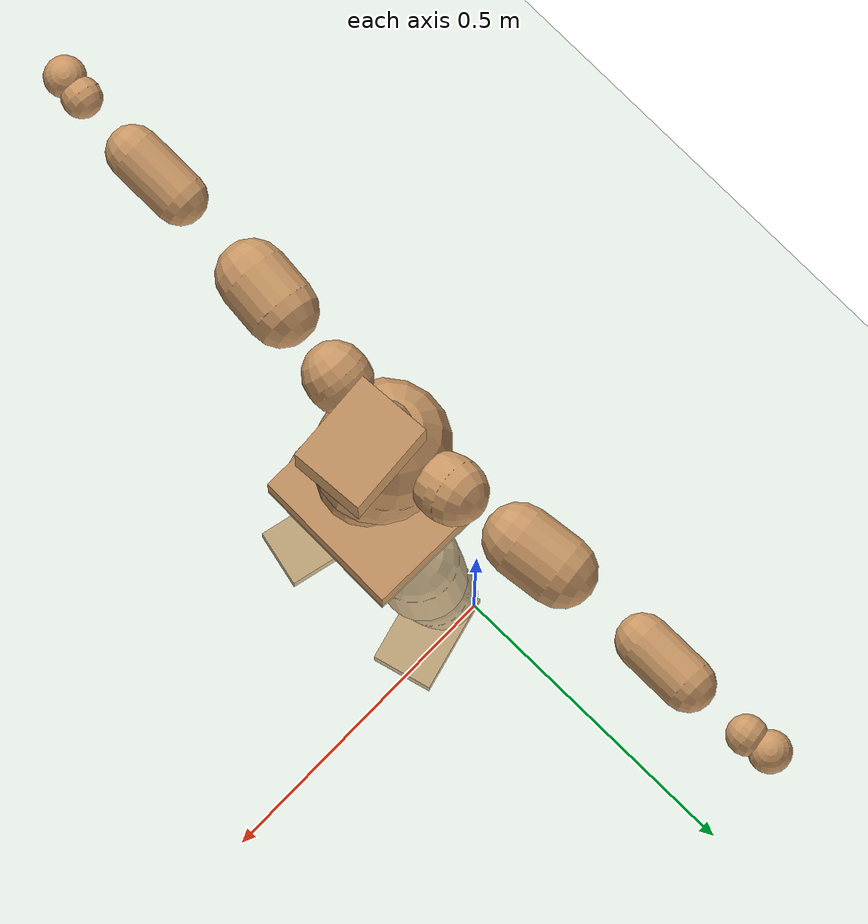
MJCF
<mujoco model="humanoid">
  <compiler coordinate="local" angle="radian"/>
  <default>
    <joint damping="0.0" armature="0.01" stiffness="0.0" limited="true"/>
    <geom conaffinity="1" condim="3" contype="7" margin="0.001" rgba="0.8 0.6 .4 1"/>
  </default>
  <asset>
    <texture type="skybox" builtin="gradient" rgb1=".4 .5 .6" rgb2="0 0 0" width="100" height="100"/>
    <texture builtin="flat" height="1278" mark="cross" markrgb="1 1 1" name="texgeom" random="0.01" rgb1="0.8 0.6 0.4" rgb2="0.8 0.6 0.4" type="cube" width="127"/>
    <texture builtin="checker" height="100" name="texplane" rgb1="0 0 0" rgb2="0.8 0.8 0.8" type="2d" width="100"/>
    <material name="MatPlane" reflectance="0.5" shininess="1" specular="1" texrepeat="60 60" texture="texplane"/>
    <material name="geom" texture="texgeom" texuniform="true"/>
  </asset>
  <worldbody>
    <light cutoff="100" diffuse="1 1 1" dir="-0 0 -1.3" directional="true" exponent="1" pos="0 0 1.3" specular=".1 .1 .1"/>
    <geom conaffinity="1" condim="3" name="floor" pos="0 0 0" rgba="0.8 0.9 0.8 1" size="100 100 .2" type="plane" material="MatPlane"/>
    <body name="Pelvis" pos="-0.0007 -0.2201 0.0384">
      <freejoint name="Pelvis"/>
      <geom type="box" contype="1" conaffinity="1" density="5359.37438" pos="-0.0052 0.0001 -0.0134" size="0.1 0.1235 0.0435" quat="0.9999 0.0000 0.0000 -0.0124" name="Pelvis"/>
      <body name="L_Hip" pos="-0.0011 0.0818 -0.0955">
        <joint name="L_Hip_x" type="hinge" pos="0 0 0" axis="1 0 0" stiffness="1600" damping="160" armature="0.02" range="-180.0000 180.0000"/>
        <joint name="L_Hip_y" type="hinge" pos="0 0 0" axis="0 1 0" stiffness="1600" damping="160" armature="0.02" range="-180.0000 180.0000"/>
        <joint name="L_Hip_z" type="hinge" pos="0 0 0" axis="0 0 1" stiffness="1600" damping="160" armature="0.02" range="-180.0000 180.0000"/>
        <geom type="capsule" contype="1" conaffinity="1" density="2040.816327" size="0.0687" fromto="-0.0037 0.0075 -0.0983 -0.0103 0.0208 -0.2730" name="L_Hip"/>
        <body name="L_Knee" pos="-0.014 0.0283 -0.3713">
          <joint name="L_Knee_x" type="hinge" pos="0 0 0" axis="1 0 0" stiffness="1600" damping="160" armature="0.02" range="-180.0000 180.0000"/>
          <joint name="L_Knee_y" type="hinge" pos="0 0 0" axis="0 1 0" stiffness="1600" damping="160" armature="0.02" range="-180.0000 180.0000"/>
          <joint name="L_Knee_z" type="hinge" pos="0 0 0" axis="0 0 1" stiffness="1600" damping="160" armature="0.02" range="-180.0000 180.0000"/>
          <geom type="capsule" contype="1" conaffinity="1" density="1234.567901" size="0.0576" fromto="-0.0110 -0.0024 -0.0869 -0.0388 -0.0083 -0.3066" name="L_Knee"/>
          <body name="L_Ankle" pos="-0.0498 -0.0107 -0.3935">
            <joint name="L_Ankle_x" type="hinge" pos="0 0 0" axis="1 0 0" stiffness="1600" damping="160" armature="0.02" range="-180.0000 180.0000"/>
            <joint name="L_Ankle_y" type="hinge" pos="0 0 0" axis="0 1 0" stiffness="1600" damping="160" armature="0.02" range="-180.0000 180.0000"/>
            <joint name="L_Ankle_z" type="hinge" pos="0 0 0" axis="0 0 1" stiffness="1600" damping="160" armature="0.02" range="-180.0000 180.0000"/>
            <geom type="box" contype="1" conaffinity="1" density="1000.000067" pos="0.0575 0.0149 -0.0284" size="0.0824 0.0507 0.0208" quat="0.9920 0.0000 0.0000 0.1263" name="L_Ankle"/>
            <body name="L_Toe" pos="0.1149 0.0298 -0.0568">
              <joint name="L_Toe_x" type="hinge" pos="0 0 0" axis="1 0 0" stiffness="1000" damping="100" armature="0.02" range="-180.0000 180.0000"/>
              <joint name="L_Toe_y" type="hinge" pos="0 0 0" axis="0 1 0" stiffness="1000" damping="100" armature="0.02" range="-180.0000 180.0000"/>
              <joint name="L_Toe_z" type="hinge" pos="0 0 0" axis="0 0 1" stiffness="1000" damping="100" armature="0.02" range="-180.0000 180.0000"/>
              <geom type="box" contype="1" conaffinity="1" density="8074798.80333" pos="0.0000 0.0000 0.0288" size="0.001 0.0024 0.0011" quat="0.9912 0.0000 0.0000 0.1322" name="L_Toe"/>
            </body>
          </body>
        </body>
      </body>
      <body name="R_Hip" pos="0.0019 -0.0793 -0.0958">
        <joint name="R_Hip_x" type="hinge" pos="0 0 0" axis="1 0 0" stiffness="1600" damping="160" armature="0.02" range="-180.0000 180.0000"/>
        <joint name="R_Hip_y" type="hinge" pos="0 0 0" axis="0 1 0" stiffness="1600" damping="160" armature="0.02" range="-180.0000 180.0000"/>
        <joint name="R_Hip_z" type="hinge" pos="0 0 0" axis="0 0 1" stiffness="1600" damping="160" armature="0.02" range="-180.0000 180.0000"/>
        <geom type="capsule" contype="1" conaffinity="1" density="2040.816327" size="0.0679" fromto="-0.0041 -0.0091 -0.0974 -0.0116 -0.0263 -0.2796" name="R_Hip"/>
        <body name="R_Knee" pos="-0.0157 -0.0354 -0.377">
          <joint name="R_Knee_x" type="hinge" pos="0 0 0" axis="1 0 0" stiffness="1600" damping="160" armature="0.02" range="-180.0000 180.0000"/>
          <joint name="R_Knee_y" type="hinge" pos="0 0 0" axis="0 1 0" stiffness="1600" damping="160" armature="0.02" range="-180.0000 180.0000"/>
          <joint name="R_Knee_z" type="hinge" pos="0 0 0" axis="0 0 1" stiffness="1600" damping="160" armature="0.02" range="-180.0000 180.0000"/>
          <geom type="capsule" contype="1" conaffinity="1" density="1234.567901" size="0.0576" fromto="-0.0107 0.0027 -0.0869 -0.0381 0.0097 -0.3086" name="R_Knee"/>
          <body name="R_Ankle" pos="-0.0488 0.0125 -0.3954">
            <joint name="R_Ankle_x" type="hinge" pos="0 0 0" axis="1 0 0" stiffness="1600" damping="160" armature="0.02" range="-180.0000 180.0000"/>
            <joint name="R_Ankle_y" type="hinge" pos="0 0 0" axis="0 1 0" stiffness="1600" damping="160" armature="0.02" range="-180.0000 180.0000"/>
            <joint name="R_Ankle_z" type="hinge" pos="0 0 0" axis="0 0 1" stiffness="1600" damping="160" armature="0.02" range="-180.0000 180.0000"/>
            <geom type="box" contype="1" conaffinity="1" density="999.999939" pos="0.0595 -0.0143 -0.0247" size="0.0839 0.0479 0.0211" quat="0.9931 0.0000 0.0000 -0.1174" name="R_Ankle"/>
            <body name="R_Toe" pos="0.119 -0.0285 -0.0495">
              <joint name="R_Toe_x" type="hinge" pos="0 0 0" axis="1 0 0" stiffness="1000" damping="100" armature="0.02" range="-180.0000 180.0000"/>
              <joint name="R_Toe_y" type="hinge" pos="0 0 0" axis="0 1 0" stiffness="1000" damping="100" armature="0.02" range="-180.0000 180.0000"/>
              <joint name="R_Toe_z" type="hinge" pos="0 0 0" axis="0 0 1" stiffness="1000" damping="100" armature="0.02" range="-180.0000 180.0000"/>
              <geom type="box" contype="1" conaffinity="1" density="8056618.692069" pos="0.0000 0.0000 0.0263" size="0.0009 0.0024 0.0011" quat="0.9942 0.0000 0.0000 -0.1077" name="R_Toe"/>
            </body>
          </body>
        </body>
      </body>
      <body name="Torso" pos="-0.0322 -0.0018 0.1111">
        <joint name="Torso_x" type="hinge" pos="0 0 0" axis="1 0 0" stiffness="2000" damping="200" armature="0.02" range="-180.0000 180.0000"/>
        <joint name="Torso_y" type="hinge" pos="0 0 0" axis="0 1 0" stiffness="2000" damping="200" armature="0.02" range="-180.0000 180.0000"/>
        <joint name="Torso_z" type="hinge" pos="0 0 0" axis="0 0 1" stiffness="2000" damping="200" armature="0.02" range="-180.0000 180.0000"/>
        <geom type="capsule" contype="1" conaffinity="1" density="2040.816327" size="0.0783" fromto="-0.0039 0.0020 0.0782 -0.0023 0.0012 0.0468" name="Torso"/>
        <body name="Spine" pos="-0.0062 0.0032 0.1251">
          <joint name="Spine_x" type="hinge" pos="0 0 0" axis="1 0 0" stiffness="2000" damping="200" armature="0.02" range="-180.0000 180.0000"/>
          <joint name="Spine_y" type="hinge" pos="0 0 0" axis="0 1 0" stiffness="2000" damping="200" armature="0.02" range="-180.0000 180.0000"/>
          <joint name="Spine_z" type="hinge" pos="0 0 0" axis="0 0 1" stiffness="2000" damping="200" armature="0.02" range="-180.0000 180.0000"/>
          <geom type="capsule" contype="1" conaffinity="1" density="2040.816327" size="0.0779" fromto="0.0434 0.0010 0.0647 -0.0095 -0.0002 -0.0141" name="Spine"/>
          <body name="Chest" pos="0.0339 0.0008 0.0506">
            <joint name="Chest_x" type="hinge" pos="0 0 0" axis="1 0 0" stiffness="2000" damping="200" armature="0.02" range="-180.0000 180.0000"/>
            <joint name="Chest_y" type="hinge" pos="0 0 0" axis="0 1 0" stiffness="2000" damping="200" armature="0.02" range="-180.0000 180.0000"/>
            <joint name="Chest_z" type="hinge" pos="0 0 0" axis="0 0 1" stiffness="2000" damping="200" armature="0.02" range="-180.0000 180.0000"/>
            <geom type="capsule" contype="1" conaffinity="1" density="2040.816327" size="0.1014" fromto="-0.0296 -0.0012 0.0970 -0.0180 -0.0007 0.0589" name="Chest"/>
            <body name="Neck" pos="-0.0559 -0.0038 0.221">
              <joint name="Neck_x" type="hinge" pos="0 0 0" axis="1 0 0" stiffness="1000" damping="100" armature="0.02" range="-180.0000 180.0000"/>
              <joint name="Neck_y" type="hinge" pos="0 0 0" axis="0 1 0" stiffness="1000" damping="100" armature="0.02" range="-180.0000 180.0000"/>
              <joint name="Neck_z" type="hinge" pos="0 0 0" axis="0 0 1" stiffness="1000" damping="100" armature="0.02" range="-180.0000 180.0000"/>
              <geom type="capsule" contype="1" conaffinity="1" density="1000" size="0.0424" fromto="0.0261 0.0007 0.0334 0.0246 0.0007 0.0314" name="Neck"/>
              <body name="Head" pos="0.0507 0.0014 0.0648">
                <joint name="Head_x" type="hinge" pos="0 0 0" axis="1 0 0" stiffness="1000" damping="100" armature="0.02" range="-180.0000 180.0000"/>
                <joint name="Head_y" type="hinge" pos="0 0 0" axis="0 1 0" stiffness="1000" damping="100" armature="0.02" range="-180.0000 180.0000"/>
                <joint name="Head_z" type="hinge" pos="0 0 0" axis="0 0 1" stiffness="1000" damping="100" armature="0.02" range="-180.0000 180.0000"/>
                <geom type="box" contype="1" conaffinity="1" density="2250.000031" pos="0.0263 0.0017 0.0334" size="0.0751 0.06 0.0536" quat="0.9995 0.0000 0.0000 0.0320" name="Head"/>
              </body>
            </body>
            <body name="L_Thorax" pos="-0.0412 0.0742 0.1233">
              <joint name="L_Thorax_x" type="hinge" pos="0 0 0" axis="1 0 0" stiffness="1000" damping="100" armature="0.02" range="-180.0000 180.0000"/>
              <joint name="L_Thorax_y" type="hinge" pos="0 0 0" axis="0 1 0" stiffness="1000" damping="100" armature="0.02" range="-180.0000 180.0000"/>
              <joint name="L_Thorax_z" type="hinge" pos="0 0 0" axis="0 0 1" stiffness="1000" damping="100" armature="0.02" range="-180.0000 180.0000"/>
              <geom type="capsule" contype="1" conaffinity="1" density="1000" size="0.0519" fromto="-0.0059 0.0484 0.0177 -0.0040 0.0327 0.0119" name="L_Thorax"/>
              <body name="L_Shoulder" pos="-0.0099 0.0811 0.0296">
                <joint name="L_Shoulder_x" type="hinge" pos="0 0 0" axis="1 0 0" stiffness="1000" damping="100" armature="0.02" range="-720.0000 720.0000"/>
                <joint name="L_Shoulder_y" type="hinge" pos="0 0 0" axis="0 1 0" stiffness="1000" damping="100" armature="0.02" range="-720.0000 720.0000"/>
                <joint name="L_Shoulder_z" type="hinge" pos="0 0 0" axis="0 0 1" stiffness="1000" damping="100" armature="0.02" range="-720.0000 720.0000"/>
                <geom type="capsule" contype="1" conaffinity="1" density="1000" size="0.0557" fromto="-0.0103 0.0850 -0.0032 -0.0194 0.1603 -0.0061" name="L_Shoulder"/>
                <body name="L_Elbow" pos="-0.0297 0.2453 -0.0093">
                  <joint name="L_Elbow_x" type="hinge" pos="0 0 0" axis="1 0 0" stiffness="1000" damping="100" armature="0.02" range="-720.0000 720.0000"/>
                  <joint name="L_Elbow_y" type="hinge" pos="0 0 0" axis="0 1 0" stiffness="1000" damping="100" armature="0.02" range="-720.0000 720.0000"/>
                  <joint name="L_Elbow_z" type="hinge" pos="0 0 0" axis="0 0 1" stiffness="1000" damping="100" armature="0.02" range="-720.0000 720.0000"/>
                  <geom type="capsule" contype="1" conaffinity="1" density="1000" size="0.0419" fromto="0.0004 0.0719 0.0028 0.0010 0.1634 0.0065" name="L_Elbow"/>
                  <body name="L_Wrist" pos="0.0014 0.2353 0.0093">
                    <joint name="L_Wrist_x" type="hinge" pos="0 0 0" axis="1 0 0" stiffness="600" damping="60" armature="0.02" range="-180.0000 180.0000"/>
                    <joint name="L_Wrist_y" type="hinge" pos="0 0 0" axis="0 1 0" stiffness="600" damping="60" armature="0.02" range="-180.0000 180.0000"/>
                    <joint name="L_Wrist_z" type="hinge" pos="0 0 0" axis="0 0 1" stiffness="600" damping="60" armature="0.02" range="-180.0000 180.0000"/>
                    <geom type="capsule" contype="1" conaffinity="1" density="1000" size="0.031" fromto="-0.0065 0.0396 -0.0048 -0.0068 0.0415 -0.0050" name="L_Wrist"/>
                    <body name="L_Hand" pos="-0.0133 0.0811 -0.0098">
                      <joint name="L_Hand_x" type="hinge" pos="0 0 0" axis="1 0 0" stiffness="600" damping="60" armature="0.02" range="-180.0000 180.0000"/>
                      <joint name="L_Hand_y" type="hinge" pos="0 0 0" axis="0 1 0" stiffness="600" damping="60" armature="0.02" range="-180.0000 180.0000"/>
                      <joint name="L_Hand_z" type="hinge" pos="0 0 0" axis="0 0 1" stiffness="600" damping="60" armature="0.02" range="-180.0000 180.0000"/>
                      <geom type="sphere" contype="1" conaffinity="1" density="1000" size="0.0329" pos="0.0000 0.0000 0.0000" name="L_Hand"/>
                    </body>
                  </body>
                </body>
              </body>
            </body>
            <body name="R_Thorax" pos="-0.0457 -0.0762 0.1232">
              <joint name="R_Thorax_x" type="hinge" pos="0 0 0" axis="1 0 0" stiffness="1000" damping="100" armature="0.02" range="-180.0000 180.0000"/>
              <joint name="R_Thorax_y" type="hinge" pos="0 0 0" axis="0 1 0" stiffness="1000" damping="100" armature="0.02" range="-180.0000 180.0000"/>
              <joint name="R_Thorax_z" type="hinge" pos="0 0 0" axis="0 0 1" stiffness="1000" damping="100" armature="0.02" range="-180.0000 180.0000"/>
              <geom type="capsule" contype="1" conaffinity="1" density="1000" size="0.0507" fromto="-0.0045 -0.0474 0.0175 -0.0033 -0.0352 0.0130" name="R_Thorax"/>
              <body name="R_Shoulder" pos="-0.0078 -0.0826 0.0305">
                <joint name="R_Shoulder_x" type="hinge" pos="0 0 0" axis="1 0 0" stiffness="1000" damping="100" armature="0.02" range="-720.0000 720.0000"/>
                <joint name="R_Shoulder_y" type="hinge" pos="0 0 0" axis="0 1 0" stiffness="1000" damping="100" armature="0.02" range="-720.0000 720.0000"/>
                <joint name="R_Shoulder_z" type="hinge" pos="0 0 0" axis="0 0 1" stiffness="1000" damping="100" armature="0.02" range="-720.0000 720.0000"/>
                <geom type="capsule" contype="1" conaffinity="1" density="1000" size="0.0562" fromto="-0.0090 -0.0857 -0.0039 -0.0159 -0.1521 -0.0069" name="R_Shoulder"/>
                <body name="R_Elbow" pos="-0.0249 -0.2377 -0.0107">
                  <joint name="R_Elbow_x" type="hinge" pos="0 0 0" axis="1 0 0" stiffness="1000" damping="100" armature="0.02" range="-720.0000 720.0000"/>
                  <joint name="R_Elbow_y" type="hinge" pos="0 0 0" axis="0 1 0" stiffness="1000" damping="100" armature="0.02" range="-720.0000 720.0000"/>
                  <joint name="R_Elbow_z" type="hinge" pos="0 0 0" axis="0 0 1" stiffness="1000" damping="100" armature="0.02" range="-720.0000 720.0000"/>
                  <geom type="capsule" contype="1" conaffinity="1" density="1000" size="0.0418" fromto="-0.0003 -0.0717 0.0033 -0.0007 -0.1679 0.0078" name="R_Elbow"/>
                  <body name="R_Wrist" pos="-0.0009 -0.2396 0.0111">
                    <joint name="R_Wrist_x" type="hinge" pos="0 0 0" axis="1 0 0" stiffness="600" damping="60" armature="0.02" range="-180.0000 180.0000"/>
                    <joint name="R_Wrist_y" type="hinge" pos="0 0 0" axis="0 1 0" stiffness="600" damping="60" armature="0.02" range="-180.0000 180.0000"/>
                    <joint name="R_Wrist_z" type="hinge" pos="0 0 0" axis="0 0 1" stiffness="600" damping="60" armature="0.02" range="-180.0000 180.0000"/>
                    <geom type="capsule" contype="1" conaffinity="1" density="1000" size="0.0312" fromto="-0.0051 -0.0389 -0.0035 -0.0054 -0.0409 -0.0037" name="R_Wrist"/>
                    <body name="R_Hand" pos="-0.0105 -0.0799 -0.0072">
                      <joint name="R_Hand_x" type="hinge" pos="0 0 0" axis="1 0 0" stiffness="600" damping="60" armature="0.02" range="-180.0000 180.0000"/>
                      <joint name="R_Hand_y" type="hinge" pos="0 0 0" axis="0 1 0" stiffness="600" damping="60" armature="0.02" range="-180.0000 180.0000"/>
                      <joint name="R_Hand_z" type="hinge" pos="0 0 0" axis="0 0 1" stiffness="600" damping="60" armature="0.02" range="-180.0000 180.0000"/>
                      <geom type="sphere" contype="1" conaffinity="1" density="1000" size="0.0324" pos="0.0000 0.0000 0.0000" name="R_Hand"/>
                    </body>
                  </body>
                </body>
              </body>
            </body>
          </body>
        </body>
      </body>
    </body>
  </worldbody>
  <actuator>
    <motor name="L_Hip_x" joint="L_Hip_x" gear="500"/>
    <motor name="L_Hip_y" joint="L_Hip_y" gear="500"/>
    <motor name="L_Hip_z" joint="L_Hip_z" gear="500"/>
    <motor name="L_Knee_x" joint="L_Knee_x" gear="500"/>
    <motor name="L_Knee_y" joint="L_Knee_y" gear="500"/>
    <motor name="L_Knee_z" joint="L_Knee_z" gear="500"/>
    <motor name="L_Ankle_x" joint="L_Ankle_x" gear="500"/>
    <motor name="L_Ankle_y" joint="L_Ankle_y" gear="500"/>
    <motor name="L_Ankle_z" joint="L_Ankle_z" gear="500"/>
    <motor name="L_Toe_x" joint="L_Toe_x" gear="500"/>
    <motor name="L_Toe_y" joint="L_Toe_y" gear="500"/>
    <motor name="L_Toe_z" joint="L_Toe_z" gear="500"/>
    <motor name="R_Hip_x" joint="R_Hip_x" gear="500"/>
    <motor name="R_Hip_y" joint="R_Hip_y" gear="500"/>
    <motor name="R_Hip_z" joint="R_Hip_z" gear="500"/>
    <motor name="R_Knee_x" joint="R_Knee_x" gear="500"/>
    <motor name="R_Knee_y" joint="R_Knee_y" gear="500"/>
    <motor name="R_Knee_z" joint="R_Knee_z" gear="500"/>
    <motor name="R_Ankle_x" joint="R_Ankle_x" gear="500"/>
    <motor name="R_Ankle_y" joint="R_Ankle_y" gear="500"/>
    <motor name="R_Ankle_z" joint="R_Ankle_z" gear="500"/>
    <motor name="R_Toe_x" joint="R_Toe_x" gear="500"/>
    <motor name="R_Toe_y" joint="R_Toe_y" gear="500"/>
    <motor name="R_Toe_z" joint="R_Toe_z" gear="500"/>
    <motor name="Torso_x" joint="Torso_x" gear="500"/>
    <motor name="Torso_y" joint="Torso_y" gear="500"/>
    <motor name="Torso_z" joint="Torso_z" gear="500"/>
    <motor name="Spine_x" joint="Spine_x" gear="500"/>
    <motor name="Spine_y" joint="Spine_y" gear="500"/>
    <motor name="Spine_z" joint="Spine_z" gear="500"/>
    <motor name="Chest_x" joint="Chest_x" gear="500"/>
    <motor name="Chest_y" joint="Chest_y" gear="500"/>
    <motor name="Chest_z" joint="Chest_z" gear="500"/>
    <motor name="Neck_x" joint="Neck_x" gear="500"/>
    <motor name="Neck_y" joint="Neck_y" gear="500"/>
    <motor name="Neck_z" joint="Neck_z" gear="500"/>
    <motor name="Head_x" joint="Head_x" gear="500"/>
    <motor name="Head_y" joint="Head_y" gear="500"/>
    <motor name="Head_z" joint="Head_z" gear="500"/>
    <motor name="L_Thorax_x" joint="L_Thorax_x" gear="500"/>
    <motor name="L_Thorax_y" joint="L_Thorax_y" gear="500"/>
    <motor name="L_Thorax_z" joint="L_Thorax_z" gear="500"/>
    <motor name="L_Shoulder_x" joint="L_Shoulder_x" gear="500"/>
    <motor name="L_Shoulder_y" joint="L_Shoulder_y" gear="500"/>
    <motor name="L_Shoulder_z" joint="L_Shoulder_z" gear="500"/>
    <motor name="L_Elbow_x" joint="L_Elbow_x" gear="500"/>
    <motor name="L_Elbow_y" joint="L_Elbow_y" gear="500"/>
    <motor name="L_Elbow_z" joint="L_Elbow_z" gear="500"/>
    <motor name="L_Wrist_x" joint="L_Wrist_x" gear="500"/>
    <motor name="L_Wrist_y" joint="L_Wrist_y" gear="500"/>
    <motor name="L_Wrist_z" joint="L_Wrist_z" gear="500"/>
    <motor name="L_Hand_x" joint="L_Hand_x" gear="500"/>
    <motor name="L_Hand_y" joint="L_Hand_y" gear="500"/>
    <motor name="L_Hand_z" joint="L_Hand_z" gear="500"/>
    <motor name="R_Thorax_x" joint="R_Thorax_x" gear="500"/>
    <motor name="R_Thorax_y" joint="R_Thorax_y" gear="500"/>
    <motor name="R_Thorax_z" joint="R_Thorax_z" gear="500"/>
    <motor name="R_Shoulder_x" joint="R_Shoulder_x" gear="500"/>
    <motor name="R_Shoulder_y" joint="R_Shoulder_y" gear="500"/>
    <motor name="R_Shoulder_z" joint="R_Shoulder_z" gear="500"/>
    <motor name="R_Elbow_x" joint="R_Elbow_x" gear="500"/>
    <motor name="R_Elbow_y" joint="R_Elbow_y" gear="500"/>
    <motor name="R_Elbow_z" joint="R_Elbow_z" gear="500"/>
    <motor name="R_Wrist_x" joint="R_Wrist_x" gear="500"/>
    <motor name="R_Wrist_y" joint="R_Wrist_y" gear="500"/>
    <motor name="R_Wrist_z" joint="R_Wrist_z" gear="500"/>
    <motor name="R_Hand_x" joint="R_Hand_x" gear="500"/>
    <motor name="R_Hand_y" joint="R_Hand_y" gear="500"/>
    <motor name="R_Hand_z" joint="R_Hand_z" gear="500"/>
  </actuator>
  <contact>
    <exclude body1="Torso" body2="Chest"/>
    <exclude body1="Head" body2="Chest"/>
    <exclude body1="R_Knee" body2="R_Toe"/>
    <exclude body1="R_Knee" body2="L_Ankle"/>
    <exclude body1="R_Knee" body2="L_Toe"/>
    <exclude body1="L_Knee" body2="L_Toe"/>
    <exclude body1="L_Knee" body2="R_Ankle"/>
    <exclude body1="L_Knee" body2="R_Toe"/>
    <exclude body1="L_Shoulder" body2="Chest"/>
    <exclude body1="R_Shoulder" body2="Chest"/>
  </contact>
  <sensor/>
  <size njmax="700" nconmax="700"/>
</mujoco>
